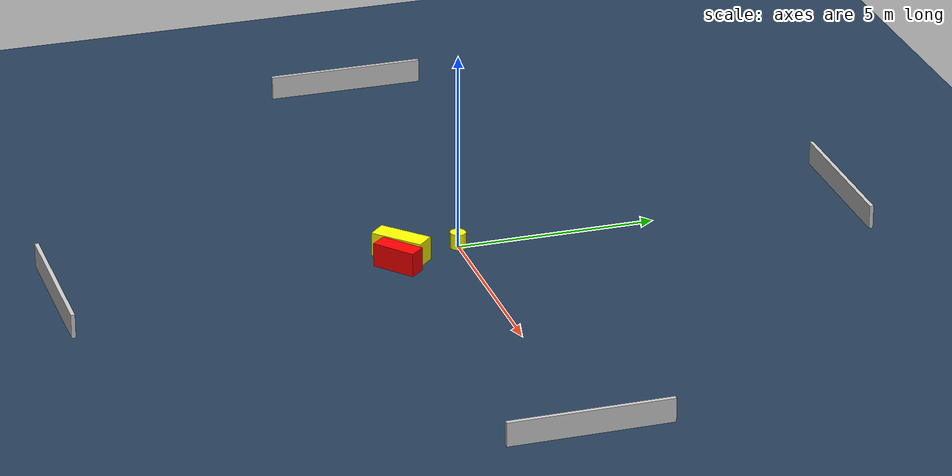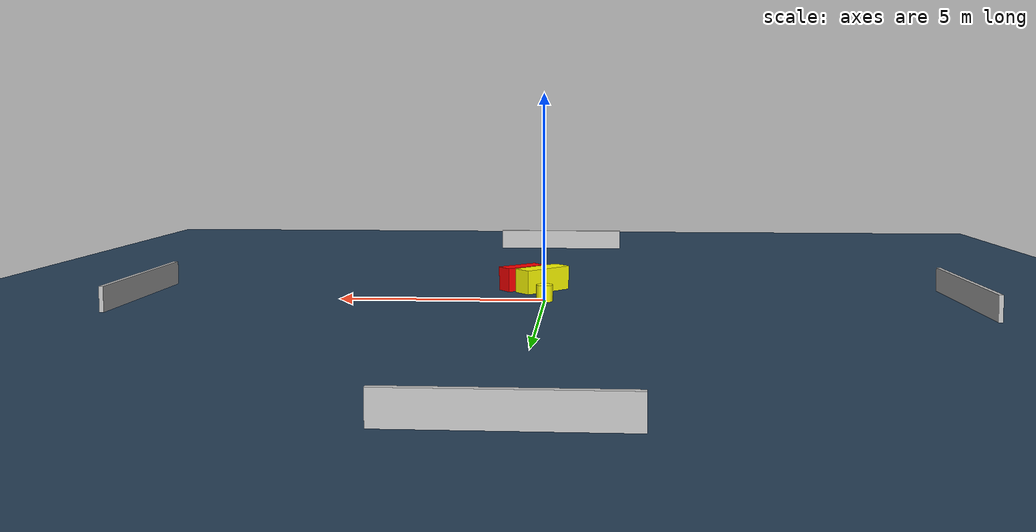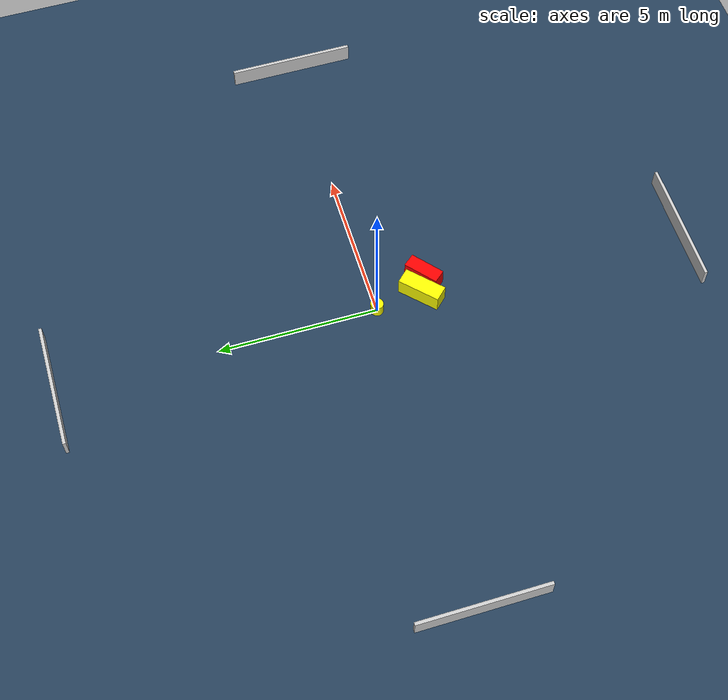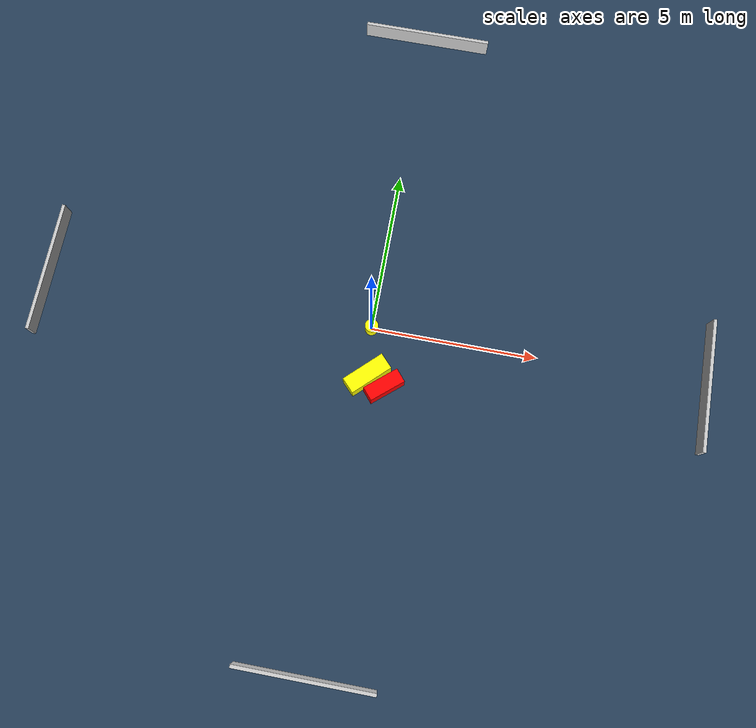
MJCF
<?xml version="1.0" ?>
<mujoco model="generated_environment">
  <option timestep="0.01" integrator="RK4" cone="elliptic"/>
  <default>
    <geom density="1"/>
  </default>
  <asset>
    <texture builtin="gradient" height="3072" name="skybox" rgb1="0.3 0.5 0.7" rgb2="0 0 0" type="skybox" width="512"/>
    <texture builtin="checker" height="300" name="groundplane" rgb1="0.2 0.3 0.4" rgb2="0.1 0.2 0.3" type="2d" width="300"/>
    <material name="groundplane" reflectance="0.2" texrepeat="5 5" texture="groundplane"/>
  </asset>
  <worldbody>
    <light dir="0 0 -1" directional="true" pos="0 0 1.5"/>
    <geom condim="3" friction="0.5 0.005 0.001" material="groundplane" name="floor" pos="0 0 0" size="0 0 0.05" type="plane"/>
    <body name="walls">
      <geom name="wall_1" condim="4" pos="-10.0 0.0 0.3" rgba="0.800000011920929 0.800000011920929 0.800000011920929 1.0" size="0.05 2.0 0.3" type="box"/>
      <geom name="wall_2" condim="4" pos="10.0 0.0 0.3" rgba="0.800000011920929 0.800000011920929 0.800000011920929 1.0" size="0.05 2.0 0.3" type="box"/>
      <geom name="wall_3" condim="4" pos="0.0 -10.0 0.3" rgba="0.800000011920929 0.800000011920929 0.800000011920929 1.0" size="2.0 0.05 0.3" type="box"/>
      <geom name="wall_4" condim="4" pos="0.0 10.0 0.3" rgba="0.800000011920929 0.800000011920929 0.800000011920929 1.0" size="2.0 0.05 0.3" type="box"/>
    </body>
    <body name="robot">
      <joint name="joint_x" type="slide" pos="0 0 0" axis="1 0 0"/>
      <joint name="joint_y" type="slide" pos="0 0 0" axis="0 1 0"/>
      <geom name="robot" type="cylinder" pos="0.0 0.0 0.2" size="0.2 0.2 0.0" mass="5.0" friction="1.0 0.005 0.0001" condim="4" rgba="1.0 1.0 0.0 1.0"/>
    </body>
    <body name="obstacle_1_movable">
      <geom name="obstacle_1_movable" condim="4" pos="0.141959162431603 -1.4859127473717682 0.3" euler="0 0 43.813665290608704" friction="0.0 0.005 0.001" rgba="1.0 1.0 0.0 1.0" size="0.6795578820689426 0.2532241480706907 0.3" type="box" mass="0.1"/>
      <joint type="free"/>
    </body>
    <body name="obstacle_2_static">
      <geom name="obstacle_2_static" condim="4" pos="0.6867083331755627 -1.725853235848186 0.3" euler="0 0 310.2503877394401" friction="0.0 0.005 0.001" rgba="1.0 0.0 0.0 1.0" size="0.2199114568037186 0.5645883826719265 0.3" type="box"/>
    </body>
  </worldbody>
  <actuator>
    <motor name="actuator_x" joint="joint_x" gear="1" ctrlrange="-1 1"/>
    <motor name="actuator_y" joint="joint_y" gear="1" ctrlrange="-1 1"/>
  </actuator>
</mujoco>
